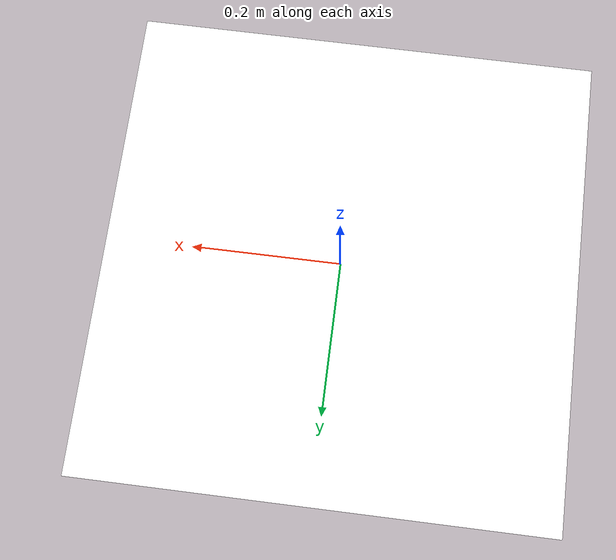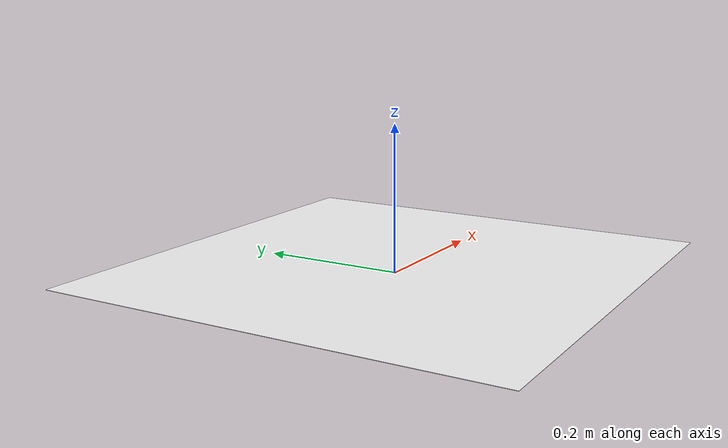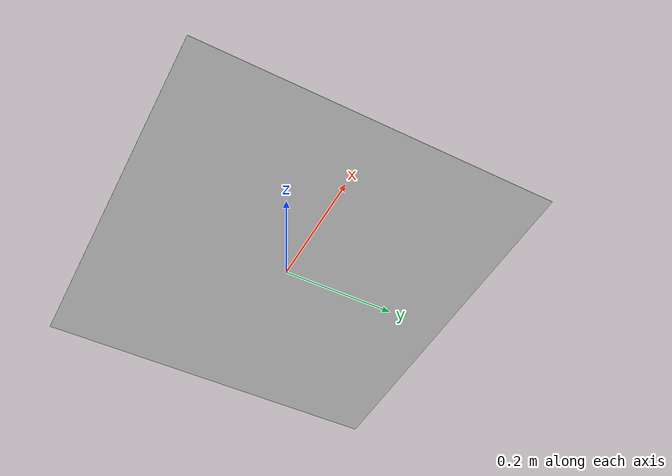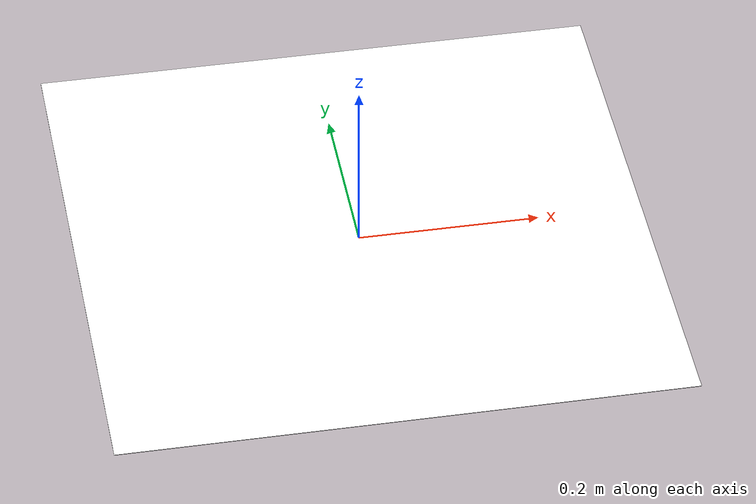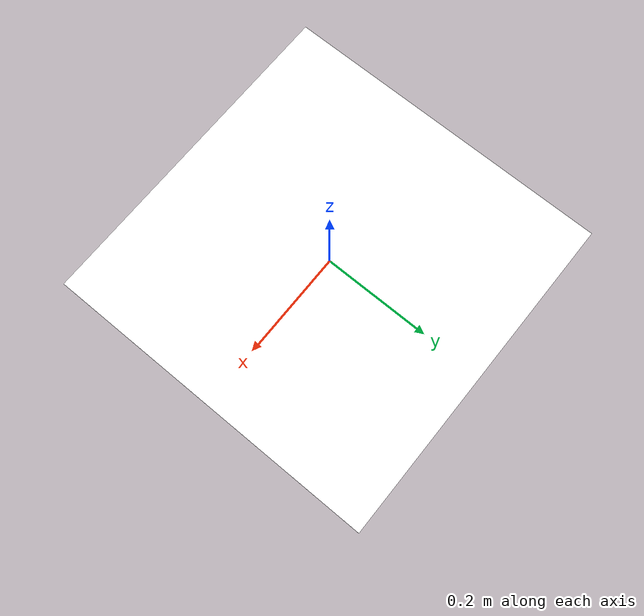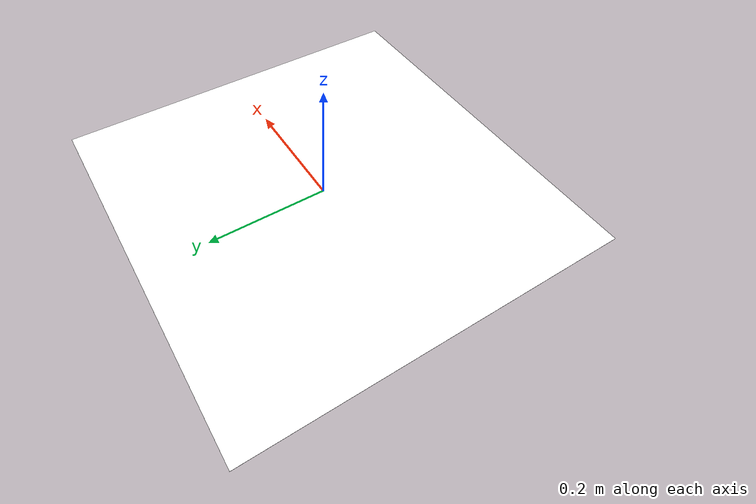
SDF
<?xml version="1.0" encoding="UTF-8"?>
<sdf version="1.9">
  <model name="fractal_aruco_marker">
    <static>true</static>
    <pose>0 0 0 0 0 0</pose>
    <link name="base">
      <collision name="base_collision">
        <pose>0 0 0.005 0 0 0</pose>
        <geometry>
          <box>
            <size>0.625 0.625 0.01</size>
          </box>
        </geometry>
      </collision>
      <visual name="base_visual">
        <pose>0 0 0.012 0 0 0</pose>
        <geometry>
          <plane>
            <normal>0 0 1</normal>
            <size>0.625 0.625</size>
          </plane>
        </geometry>
        <material>
          <diffuse>1 1 1 1</diffuse>
          <specular>0.2 0.2 0.2 1</specular>
          <pbr>
            <metal>
              <albedo_map>model://fractal_aruco_marker/marker.png</albedo_map>
            </metal>
          </pbr>
        </material>
      </visual>
    </link>
  </model>
</sdf>
